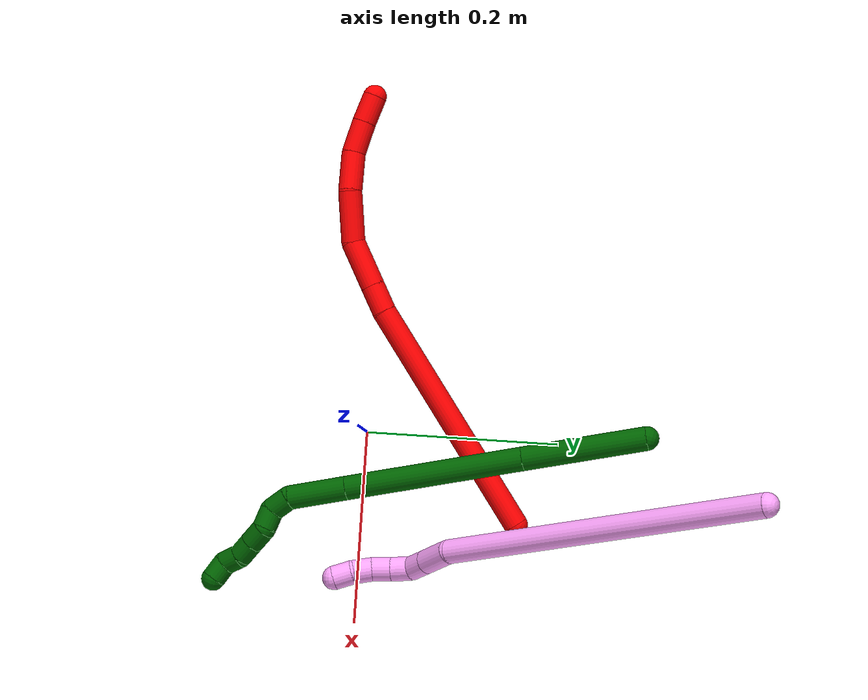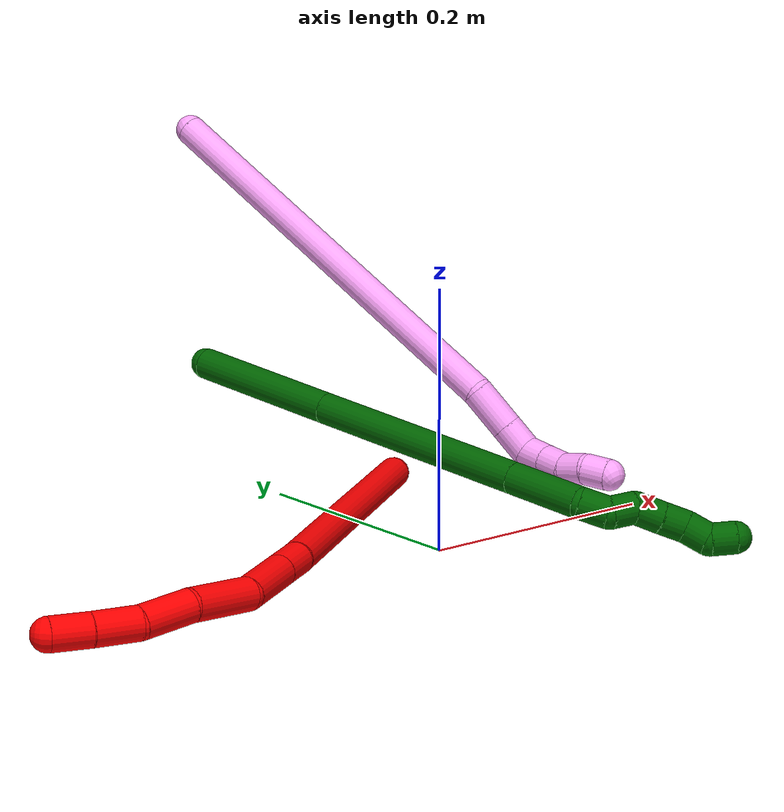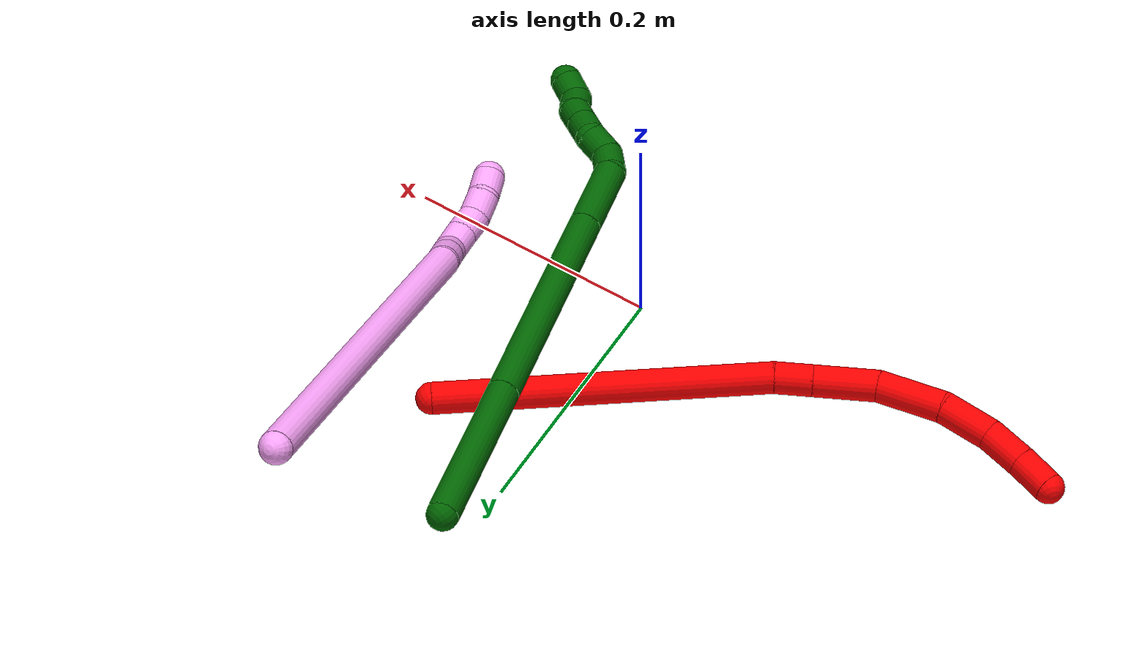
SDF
<sdf version="1.7">
 <world name="default">
  <model name="photoneo_s_sensor">
   <static>1</static>
   <pose>0 0 2 1.57079 1.57079 3.14159</pose>
   <link name="link">
    <inertial><mass>0.1</mass></inertial>
    <sensor name="sensor" type="depth">
     <update_rate>30</update_rate>
     <camera>
      <horizontal_fov>1.22</horizontal_fov>
      <image><width>1920</width><height>1200</height><format>B8G8R8</format></image>
      <clip><near>0.1</near><far>4</far></clip>
      <depth_camera><output>points</output></depth_camera>
     </camera>
     <plugin name="camera_plugin" filename="libgazebo_ros_depth_camera.so">
      <baseline>0.2</baseline>
      <alwaysOn>1</alwaysOn>
      <updateRate>0.0</updateRate>
      <cameraName>camera_ir</cameraName>
      <imageTopicName>/camera/color/image_raw</imageTopicName>
      <cameraInfoTopicName>/camera/color/camera_info</cameraInfoTopicName>
      <depthImageTopicName>/camera/depth/image_raw</depthImageTopicName>
      <depthImageCameraInfoTopicName>/camera/depth/camera_info</depthImageCameraInfoTopicName>
      <pointCloudTopicName>/camera/depth/points</pointCloudTopicName>
      <frameName>fr_optical</frameName>
      <pointCloudCutoff>0.1</pointCloudCutoff>
      <pointCloudCutoffMax>2.0</pointCloudCutoffMax>
      <distortionK1>0</distortionK1>
      <distortionK2>0</distortionK2>
      <distortionK3>0</distortionK3>
      <distortionT1>0</distortionT1>
      <distortionT2>0</distortionT2>
      <CxPrime>0</CxPrime>
      <Cx>0</Cx>
      <Cy>0</Cy>
      <focalLength>0</focalLength>
      <hackBaseline>0</hackBaseline>
     </plugin>
    </sensor>
   </link>
  </model>
  <model name="bin">
   <static>1</static>
   <link name="bottom">
    <collision name="collision-bottom">
     <pose>0 0 -0.01 0 -0 0</pose>
     <geometry><box><size>0.8 0.6 0.02</size></box></geometry>
     <surface>
      <friction><ode><mu>100</mu><mu2>100</mu2></ode></friction>
      <contact><collide_bitmask>65535</collide_bitmask></contact>
     </surface>
    </collision>
   </link>
   <link name="west_wall">
    <collision name="collision-west_wall">
     <pose>-0.41 0 0.1 0 -0 0</pose>
     <geometry><box><size>0.02 0.6 0.2</size></box></geometry>
     <surface>
      <friction><ode><mu>100</mu><mu2>100</mu2></ode></friction>
      <contact><collide_bitmask>65535</collide_bitmask></contact>
     </surface>
    </collision>
   </link>
   <link name="east_wall">
    <collision name="collision-east_wall">
     <pose>0.41 0 0.1 0 -0 0</pose>
     <geometry><box><size>0.02 0.6 0.2</size></box></geometry>
     <surface>
      <friction><ode><mu>100</mu><mu2>100</mu2></ode></friction>
      <contact><collide_bitmask>65535</collide_bitmask></contact>
     </surface>
    </collision>
   </link>
   <link name="south_wall">
    <collision name="collision-south_wall">
     <pose>0 -0.31 0.1 0 -0 0</pose>
     <geometry><box><size>0.8 0.02 0.2</size></box></geometry>
     <surface>
      <friction><ode><mu>100</mu><mu2>100</mu2></ode></friction>
      <contact><collide_bitmask>65535</collide_bitmask></contact>
     </surface>
    </collision>
   </link>
   <link name="north_wall">
    <collision name="collision-north_wall">
     <pose>0 0.31 0.1 0 -0 0</pose>
     <geometry><box><size>0.8 0.02 0.2</size></box></geometry>
     <surface>
      <friction><ode><mu>100</mu><mu2>100</mu2></ode></friction>
      <contact><collide_bitmask>65535</collide_bitmask></contact>
     </surface>
    </collision>
   </link>
  </model>
  <model name="2">
   <static>0</static>
   <link name="2">
    <collision name="collision-cylinder-e_1_1_4">
     <pose>-0.126874 0.00416 0.03083 -0.134109 -1.33034 0.105259</pose>
     <geometry><cylinder><radius>0.0125</radius><length>0.261264</length></cylinder></geometry>
     <surface>
      <friction><ode><mu>1.16</mu><mu2>1.16</mu2><slip1>0</slip1><slip2>0</slip2></ode></friction>
      <contact><ode><kp>1e+06</kp><kd>1</kd><max_vel>0</max_vel><min_depth>0.001</min_depth></ode></contact>
     </surface>
    </collision>
    <visual name="visual-cylinder-e_1_1_4">
     <pose>-0.126874 0.00416 0.03083 -0.134109 -1.33034 0.105259</pose>
     <geometry><cylinder><radius>0.0125</radius><length>0.261264</length></cylinder></geometry>
     <material><ambient>1 0 0 1</ambient></material>
    </visual>
    <collision name="collision-cylinder-e_2_4_5">
     <pose>-0.267495 0.009745 0.066961 -0.262749 -1.19091 0.178563</pose>
     <geometry><cylinder><radius>0.0125</radius><length>0.029606</length></cylinder></geometry>
     <surface>
      <friction><ode><mu>1.16</mu><mu2>1.16</mu2><slip1>0</slip1><slip2>0</slip2></ode></friction>
      <contact><ode><kp>1e+06</kp><kd>1</kd><max_vel>0</max_vel><min_depth>0.001</min_depth></ode></contact>
     </surface>
    </collision>
    <visual name="visual-cylinder-e_2_4_5">
     <pose>-0.267495 0.009745 0.066961 -0.262749 -1.19091 0.178563</pose>
     <geometry><cylinder><radius>0.0125</radius><length>0.029606</length></cylinder></geometry>
     <material><ambient>1 0 0 1</ambient></material>
    </visual>
    <collision name="collision-cylinder-e_3_5_6">
     <pose>-0.304763 0.013608 0.081335 -0.262448 -1.1908 0.178337</pose>
     <geometry><cylinder><radius>0.0125</radius><length>0.050655</length></cylinder></geometry>
     <surface>
      <friction><ode><mu>1.16</mu><mu2>1.16</mu2><slip1>0</slip1><slip2>0</slip2></ode></friction>
      <contact><ode><kp>1e+06</kp><kd>1</kd><max_vel>0</max_vel><min_depth>0.001</min_depth></ode></contact>
     </surface>
    </collision>
    <visual name="visual-cylinder-e_3_5_6">
     <pose>-0.304763 0.013608 0.081335 -0.262448 -1.1908 0.178337</pose>
     <geometry><cylinder><radius>0.0125</radius><length>0.050655</length></cylinder></geometry>
     <material><ambient>1 0 0 1</ambient></material>
    </visual>
    <collision name="collision-cylinder-e_4_6_7">
     <pose>-0.34835 0.015873 0.108447 0.009557 -0.838497 -0.004259</pose>
     <geometry><cylinder><radius>0.0125</radius><length>0.053968</length></cylinder></geometry>
     <surface>
      <friction><ode><mu>1.16</mu><mu2>1.16</mu2><slip1>0</slip1><slip2>0</slip2></ode></friction>
      <contact><ode><kp>1e+06</kp><kd>1</kd><max_vel>0</max_vel><min_depth>0.001</min_depth></ode></contact>
     </surface>
    </collision>
    <visual name="visual-cylinder-e_4_6_7">
     <pose>-0.34835 0.015873 0.108447 0.009557 -0.838497 -0.004259</pose>
     <geometry><cylinder><radius>0.0125</radius><length>0.053968</length></cylinder></geometry>
     <material><ambient>1 0 0 1</ambient></material>
    </visual>
    <collision name="collision-cylinder-e_5_7_8">
     <pose>-0.381354 0.019285 0.141872 -0.228925 -0.686215 0.082093</pose>
     <geometry><cylinder><radius>0.0125</radius><length>0.040838</length></cylinder></geometry>
     <surface>
      <friction><ode><mu>1.16</mu><mu2>1.16</mu2><slip1>0</slip1><slip2>0</slip2></ode></friction>
      <contact><ode><kp>1e+06</kp><kd>1</kd><max_vel>0</max_vel><min_depth>0.001</min_depth></ode></contact>
     </surface>
    </collision>
    <visual name="visual-cylinder-e_5_7_8">
     <pose>-0.381354 0.019285 0.141872 -0.228925 -0.686215 0.082093</pose>
     <geometry><cylinder><radius>0.0125</radius><length>0.040838</length></cylinder></geometry>
     <material><ambient>1 0 0 1</ambient></material>
    </visual>
    <collision name="collision-cylinder-e_6_8_9">
     <pose>-0.401718 0.024272 0.172525 -0.091559 -0.451069 0.021021</pose>
     <geometry><cylinder><radius>0.0125</radius><length>0.034071</length></cylinder></geometry>
     <surface>
      <friction><ode><mu>1.16</mu><mu2>1.16</mu2><slip1>0</slip1><slip2>0</slip2></ode></friction>
      <contact><ode><kp>1e+06</kp><kd>1</kd><max_vel>0</max_vel><min_depth>0.001</min_depth></ode></contact>
     </surface>
    </collision>
    <visual name="visual-cylinder-e_6_8_9">
     <pose>-0.401718 0.024272 0.172525 -0.091559 -0.451069 0.021021</pose>
     <geometry><cylinder><radius>0.0125</radius><length>0.034071</length></cylinder></geometry>
     <material><ambient>1 0 0 1</ambient></material>
    </visual>
    <collision name="collision-cylinder-e_7_9_2">
     <pose>-0.41476 0.02673 0.201444 -0.077252 -0.389196 0.015233</pose>
     <geometry><cylinder><radius>0.0125</radius><length>0.029599</length></cylinder></geometry>
     <surface>
      <friction><ode><mu>1.16</mu><mu2>1.16</mu2><slip1>0</slip1><slip2>0</slip2></ode></friction>
      <contact><ode><kp>1e+06</kp><kd>1</kd><max_vel>0</max_vel><min_depth>0.001</min_depth></ode></contact>
     </surface>
    </collision>
    <visual name="visual-cylinder-e_7_9_2">
     <pose>-0.41476 0.02673 0.201444 -0.077252 -0.389196 0.015233</pose>
     <geometry><cylinder><radius>0.0125</radius><length>0.029599</length></cylinder></geometry>
     <material><ambient>1 0 0 1</ambient></material>
    </visual>
    <collision name="collision-sphere-2">
     <pose>-0.420375 0.027787 0.215096 0 -0 0</pose>
     <geometry><sphere><radius>0.0125</radius></sphere></geometry>
     <surface>
      <friction><ode><mu>1.16</mu><mu2>1.16</mu2><slip1>0</slip1><slip2>0</slip2></ode></friction>
      <contact><ode><kp>1e+06</kp><kd>1</kd><max_vel>0</max_vel><min_depth>0.001</min_depth></ode></contact>
     </surface>
    </collision>
    <visual name="visual-sphere-2">
     <pose>-0.420375 0.027787 0.215096 0 -0 0</pose>
     <geometry><sphere><radius>0.0125</radius></sphere></geometry>
     <material><ambient>1 0 0 1</ambient></material>
    </visual>
    <collision name="collision-sphere-9">
     <pose>-0.409144 0.025674 0.187792 0 -0 0</pose>
     <geometry><sphere><radius>0.0125</radius></sphere></geometry>
     <surface>
      <friction><ode><mu>1.16</mu><mu2>1.16</mu2><slip1>0</slip1><slip2>0</slip2></ode></friction>
      <contact><ode><kp>1e+06</kp><kd>1</kd><max_vel>0</max_vel><min_depth>0.001</min_depth></ode></contact>
     </surface>
    </collision>
    <visual name="visual-sphere-9">
     <pose>-0.409144 0.025674 0.187792 0 -0 0</pose>
     <geometry><sphere><radius>0.0125</radius></sphere></geometry>
     <material><ambient>1 0 0 1</ambient></material>
    </visual>
    <collision name="collision-sphere-4">
     <pose>-0.253747 0.008319 0.06166 0 -0 0</pose>
     <geometry><sphere><radius>0.0125</radius></sphere></geometry>
     <surface>
      <friction><ode><mu>1.16</mu><mu2>1.16</mu2><slip1>0</slip1><slip2>0</slip2></ode></friction>
      <contact><ode><kp>1e+06</kp><kd>1</kd><max_vel>0</max_vel><min_depth>0.001</min_depth></ode></contact>
     </surface>
    </collision>
    <visual name="visual-sphere-4">
     <pose>-0.253747 0.008319 0.06166 0 -0 0</pose>
     <geometry><sphere><radius>0.0125</radius></sphere></geometry>
     <material><ambient>1 0 0 1</ambient></material>
    </visual>
    <collision name="collision-sphere-1">
     <geometry><sphere><radius>0.0125</radius></sphere></geometry>
     <surface>
      <friction><ode><mu>1.16</mu><mu2>1.16</mu2><slip1>0</slip1><slip2>0</slip2></ode></friction>
      <contact><ode><kp>1e+06</kp><kd>1</kd><max_vel>0</max_vel><min_depth>0.001</min_depth></ode></contact>
     </surface>
    </collision>
    <visual name="visual-sphere-1">
     <geometry><sphere><radius>0.0125</radius></sphere></geometry>
     <material><ambient>1 0 0 1</ambient></material>
    </visual>
    <collision name="collision-sphere-8">
     <pose>-0.394292 0.02287 0.157257 0 -0 0</pose>
     <geometry><sphere><radius>0.0125</radius></sphere></geometry>
     <surface>
      <friction><ode><mu>1.16</mu><mu2>1.16</mu2><slip1>0</slip1><slip2>0</slip2></ode></friction>
      <contact><ode><kp>1e+06</kp><kd>1</kd><max_vel>0</max_vel><min_depth>0.001</min_depth></ode></contact>
     </surface>
    </collision>
    <visual name="visual-sphere-8">
     <pose>-0.394292 0.02287 0.157257 0 -0 0</pose>
     <geometry><sphere><radius>0.0125</radius></sphere></geometry>
     <material><ambient>1 0 0 1</ambient></material>
    </visual>
    <collision name="collision-sphere-5">
     <pose>-0.281242 0.011171 0.072262 0 -0 0</pose>
     <geometry><sphere><radius>0.0125</radius></sphere></geometry>
     <surface>
      <friction><ode><mu>1.16</mu><mu2>1.16</mu2><slip1>0</slip1><slip2>0</slip2></ode></friction>
      <contact><ode><kp>1e+06</kp><kd>1</kd><max_vel>0</max_vel><min_depth>0.001</min_depth></ode></contact>
     </surface>
    </collision>
    <visual name="visual-sphere-5">
     <pose>-0.281242 0.011171 0.072262 0 -0 0</pose>
     <geometry><sphere><radius>0.0125</radius></sphere></geometry>
     <material><ambient>1 0 0 1</ambient></material>
    </visual>
    <collision name="collision-sphere-6">
     <pose>-0.328284 0.016045 0.090407 0 -0 0</pose>
     <geometry><sphere><radius>0.0125</radius></sphere></geometry>
     <surface>
      <friction><ode><mu>1.16</mu><mu2>1.16</mu2><slip1>0</slip1><slip2>0</slip2></ode></friction>
      <contact><ode><kp>1e+06</kp><kd>1</kd><max_vel>0</max_vel><min_depth>0.001</min_depth></ode></contact>
     </surface>
    </collision>
    <visual name="visual-sphere-6">
     <pose>-0.328284 0.016045 0.090407 0 -0 0</pose>
     <geometry><sphere><radius>0.0125</radius></sphere></geometry>
     <material><ambient>1 0 0 1</ambient></material>
    </visual>
    <collision name="collision-sphere-7">
     <pose>-0.368416 0.0157 0.126487 0 -0 0</pose>
     <geometry><sphere><radius>0.0125</radius></sphere></geometry>
     <surface>
      <friction><ode><mu>1.16</mu><mu2>1.16</mu2><slip1>0</slip1><slip2>0</slip2></ode></friction>
      <contact><ode><kp>1e+06</kp><kd>1</kd><max_vel>0</max_vel><min_depth>0.001</min_depth></ode></contact>
     </surface>
    </collision>
    <visual name="visual-sphere-7">
     <pose>-0.368416 0.0157 0.126487 0 -0 0</pose>
     <geometry><sphere><radius>0.0125</radius></sphere></geometry>
     <material><ambient>1 0 0 1</ambient></material>
    </visual>
    <inertial>
     <pose>-0.233683 0.010654 0.075289 0 -0 0</pose>
     <mass>0.5</mass>
     <inertia>
      <ixx>0.000389</ixx>
      <ixy>0</ixy>
      <ixz>0</ixz>
      <iyy>0.001583</iyy>
      <iyz>0</iyz>
      <izz>0.001453</izz>
     </inertia>
    </inertial>
   </link>
   <pose>0.086918 0.162267 0.01149 -1.49866 0.03196 0.85929</pose>
  </model>
  <model name="4">
   <static>0</static>
   <link name="4">
    <collision name="collision-cylinder-e_1_1_4">
     <pose>0.015908 -0.039736 -0.173001 2.91582 0.089382 0.751478</pose>
     <geometry><cylinder><radius>0.0125</radius><length>0.356434</length></cylinder></geometry>
     <surface>
      <friction><ode><mu>1.16</mu><mu2>1.16</mu2><slip1>0</slip1><slip2>0</slip2></ode></friction>
      <contact><ode><kp>1e+06</kp><kd>1</kd><max_vel>0</max_vel><min_depth>0.001</min_depth></ode></contact>
     </surface>
    </collision>
    <visual name="visual-cylinder-e_1_1_4">
     <pose>0.015908 -0.039736 -0.173001 2.91582 0.089382 0.751478</pose>
     <geometry><cylinder><radius>0.0125</radius><length>0.356434</length></cylinder></geometry>
     <material><ambient>1 0.65098 0.996078 1</ambient></material>
    </visual>
    <collision name="collision-cylinder-e_2_4_5">
     <pose>0.037579 -0.078636 -0.363454 -3.09375 0.318598 -2.84594</pose>
     <geometry><cylinder><radius>0.0125</radius><length>0.036796</length></cylinder></geometry>
     <surface>
      <friction><ode><mu>1.16</mu><mu2>1.16</mu2><slip1>0</slip1><slip2>0</slip2></ode></friction>
      <contact><ode><kp>1e+06</kp><kd>1</kd><max_vel>0</max_vel><min_depth>0.001</min_depth></ode></contact>
     </surface>
    </collision>
    <visual name="visual-cylinder-e_2_4_5">
     <pose>0.037579 -0.078636 -0.363454 -3.09375 0.318598 -2.84594</pose>
     <geometry><cylinder><radius>0.0125</radius><length>0.036796</length></cylinder></geometry>
     <material><ambient>1 0.65098 0.996078 1</ambient></material>
    </visual>
    <collision name="collision-cylinder-e_3_5_6">
     <pose>0.047164 -0.077276 -0.392741 -3.09736 0.312097 -2.86225</pose>
     <geometry><cylinder><radius>0.0125</radius><length>0.024893</length></cylinder></geometry>
     <surface>
      <friction><ode><mu>1.16</mu><mu2>1.16</mu2><slip1>0</slip1><slip2>0</slip2></ode></friction>
      <contact><ode><kp>1e+06</kp><kd>1</kd><max_vel>0</max_vel><min_depth>0.001</min_depth></ode></contact>
     </surface>
    </collision>
    <visual name="visual-cylinder-e_3_5_6">
     <pose>0.047164 -0.077276 -0.392741 -3.09736 0.312097 -2.86225</pose>
     <geometry><cylinder><radius>0.0125</radius><length>0.024893</length></cylinder></geometry>
     <material><ambient>1 0.65098 0.996078 1</ambient></material>
    </visual>
    <collision name="collision-cylinder-e_4_6_7">
     <pose>0.050361 -0.082443 -0.413476 2.57282 -0.059097 -0.201547</pose>
     <geometry><cylinder><radius>0.0125</radius><length>0.021166</length></cylinder></geometry>
     <surface>
      <friction><ode><mu>1.16</mu><mu2>1.16</mu2><slip1>0</slip1><slip2>0</slip2></ode></friction>
      <contact><ode><kp>1e+06</kp><kd>1</kd><max_vel>0</max_vel><min_depth>0.001</min_depth></ode></contact>
     </surface>
    </collision>
    <visual name="visual-cylinder-e_4_6_7">
     <pose>0.050361 -0.082443 -0.413476 2.57282 -0.059097 -0.201547</pose>
     <geometry><cylinder><radius>0.0125</radius><length>0.021166</length></cylinder></geometry>
     <material><ambient>1 0.65098 0.996078 1</ambient></material>
    </visual>
    <collision name="collision-cylinder-e_5_7_8">
     <pose>0.048484 -0.093894 -0.430779 2.54052 -0.122288 -0.390043</pose>
     <geometry><cylinder><radius>0.0125</radius><length>0.02053</length></cylinder></geometry>
     <surface>
      <friction><ode><mu>1.16</mu><mu2>1.16</mu2><slip1>0</slip1><slip2>0</slip2></ode></friction>
      <contact><ode><kp>1e+06</kp><kd>1</kd><max_vel>0</max_vel><min_depth>0.001</min_depth></ode></contact>
     </surface>
    </collision>
    <visual name="visual-cylinder-e_5_7_8">
     <pose>0.048484 -0.093894 -0.430779 2.54052 -0.122288 -0.390043</pose>
     <geometry><cylinder><radius>0.0125</radius><length>0.02053</length></cylinder></geometry>
     <material><ambient>1 0.65098 0.996078 1</ambient></material>
    </visual>
    <collision name="collision-cylinder-e_6_8_9">
     <pose>0.046946 -0.107513 -0.445492 2.24742 -0.028304 -0.059018</pose>
     <geometry><cylinder><radius>0.0125</radius><length>0.020163</length></cylinder></geometry>
     <surface>
      <friction><ode><mu>1.16</mu><mu2>1.16</mu2><slip1>0</slip1><slip2>0</slip2></ode></friction>
      <contact><ode><kp>1e+06</kp><kd>1</kd><max_vel>0</max_vel><min_depth>0.001</min_depth></ode></contact>
     </surface>
    </collision>
    <visual name="visual-cylinder-e_6_8_9">
     <pose>0.046946 -0.107513 -0.445492 2.24742 -0.028304 -0.059018</pose>
     <geometry><cylinder><radius>0.0125</radius><length>0.020163</length></cylinder></geometry>
     <material><ambient>1 0.65098 0.996078 1</ambient></material>
    </visual>
    <collision name="collision-cylinder-e_7_9_2">
     <pose>0.048237 -0.12169 -0.459402 2.44792 0.158126 0.431568</pose>
     <geometry><cylinder><radius>0.0125</radius><length>0.020017</length></cylinder></geometry>
     <surface>
      <friction><ode><mu>1.16</mu><mu2>1.16</mu2><slip1>0</slip1><slip2>0</slip2></ode></friction>
      <contact><ode><kp>1e+06</kp><kd>1</kd><max_vel>0</max_vel><min_depth>0.001</min_depth></ode></contact>
     </surface>
    </collision>
    <visual name="visual-cylinder-e_7_9_2">
     <pose>0.048237 -0.12169 -0.459402 2.44792 0.158126 0.431568</pose>
     <geometry><cylinder><radius>0.0125</radius><length>0.020017</length></cylinder></geometry>
     <material><ambient>1 0.65098 0.996078 1</ambient></material>
    </visual>
    <collision name="collision-sphere-2">
     <pose>0.049813 -0.12801 -0.467001 0 -0 0</pose>
     <geometry><sphere><radius>0.0125</radius></sphere></geometry>
     <surface>
      <friction><ode><mu>1.16</mu><mu2>1.16</mu2><slip1>0</slip1><slip2>0</slip2></ode></friction>
      <contact><ode><kp>1e+06</kp><kd>1</kd><max_vel>0</max_vel><min_depth>0.001</min_depth></ode></contact>
     </surface>
    </collision>
    <visual name="visual-sphere-2">
     <pose>0.049813 -0.12801 -0.467001 0 -0 0</pose>
     <geometry><sphere><radius>0.0125</radius></sphere></geometry>
     <material><ambient>1 0.65098 0.996078 1</ambient></material>
    </visual>
    <collision name="collision-sphere-9">
     <pose>0.046661 -0.115371 -0.451802 0 -0 0</pose>
     <geometry><sphere><radius>0.0125</radius></sphere></geometry>
     <surface>
      <friction><ode><mu>1.16</mu><mu2>1.16</mu2><slip1>0</slip1><slip2>0</slip2></ode></friction>
      <contact><ode><kp>1e+06</kp><kd>1</kd><max_vel>0</max_vel><min_depth>0.001</min_depth></ode></contact>
     </surface>
    </collision>
    <visual name="visual-sphere-9">
     <pose>0.046661 -0.115371 -0.451802 0 -0 0</pose>
     <geometry><sphere><radius>0.0125</radius></sphere></geometry>
     <material><ambient>1 0.65098 0.996078 1</ambient></material>
    </visual>
    <collision name="collision-sphere-4">
     <pose>0.031816 -0.079471 -0.346002 0 -0 0</pose>
     <geometry><sphere><radius>0.0125</radius></sphere></geometry>
     <surface>
      <friction><ode><mu>1.16</mu><mu2>1.16</mu2><slip1>0</slip1><slip2>0</slip2></ode></friction>
      <contact><ode><kp>1e+06</kp><kd>1</kd><max_vel>0</max_vel><min_depth>0.001</min_depth></ode></contact>
     </surface>
    </collision>
    <visual name="visual-sphere-4">
     <pose>0.031816 -0.079471 -0.346002 0 -0 0</pose>
     <geometry><sphere><radius>0.0125</radius></sphere></geometry>
     <material><ambient>1 0.65098 0.996078 1</ambient></material>
    </visual>
    <collision name="collision-sphere-1">
     <geometry><sphere><radius>0.0125</radius></sphere></geometry>
     <surface>
      <friction><ode><mu>1.16</mu><mu2>1.16</mu2><slip1>0</slip1><slip2>0</slip2></ode></friction>
      <contact><ode><kp>1e+06</kp><kd>1</kd><max_vel>0</max_vel><min_depth>0.001</min_depth></ode></contact>
     </surface>
    </collision>
    <visual name="visual-sphere-1">
     <geometry><sphere><radius>0.0125</radius></sphere></geometry>
     <material><ambient>1 0.65098 0.996078 1</ambient></material>
    </visual>
    <collision name="collision-sphere-8">
     <pose>0.047232 -0.099656 -0.439182 0 -0 0</pose>
     <geometry><sphere><radius>0.0125</radius></sphere></geometry>
     <surface>
      <friction><ode><mu>1.16</mu><mu2>1.16</mu2><slip1>0</slip1><slip2>0</slip2></ode></friction>
      <contact><ode><kp>1e+06</kp><kd>1</kd><max_vel>0</max_vel><min_depth>0.001</min_depth></ode></contact>
     </surface>
    </collision>
    <visual name="visual-sphere-8">
     <pose>0.047232 -0.099656 -0.439182 0 -0 0</pose>
     <geometry><sphere><radius>0.0125</radius></sphere></geometry>
     <material><ambient>1 0.65098 0.996078 1</ambient></material>
    </visual>
    <collision name="collision-sphere-5">
     <pose>0.043342 -0.0778 -0.380907 0 -0 0</pose>
     <geometry><sphere><radius>0.0125</radius></sphere></geometry>
     <surface>
      <friction><ode><mu>1.16</mu><mu2>1.16</mu2><slip1>0</slip1><slip2>0</slip2></ode></friction>
      <contact><ode><kp>1e+06</kp><kd>1</kd><max_vel>0</max_vel><min_depth>0.001</min_depth></ode></contact>
     </surface>
    </collision>
    <visual name="visual-sphere-5">
     <pose>0.043342 -0.0778 -0.380907 0 -0 0</pose>
     <geometry><sphere><radius>0.0125</radius></sphere></geometry>
     <material><ambient>1 0.65098 0.996078 1</ambient></material>
    </visual>
    <collision name="collision-sphere-6">
     <pose>0.050986 -0.076753 -0.404574 0 -0 0</pose>
     <geometry><sphere><radius>0.0125</radius></sphere></geometry>
     <surface>
      <friction><ode><mu>1.16</mu><mu2>1.16</mu2><slip1>0</slip1><slip2>0</slip2></ode></friction>
      <contact><ode><kp>1e+06</kp><kd>1</kd><max_vel>0</max_vel><min_depth>0.001</min_depth></ode></contact>
     </surface>
    </collision>
    <visual name="visual-sphere-6">
     <pose>0.050986 -0.076753 -0.404574 0 -0 0</pose>
     <geometry><sphere><radius>0.0125</radius></sphere></geometry>
     <material><ambient>1 0.65098 0.996078 1</ambient></material>
    </visual>
    <collision name="collision-sphere-7">
     <pose>0.049736 -0.088133 -0.422377 0 -0 0</pose>
     <geometry><sphere><radius>0.0125</radius></sphere></geometry>
     <surface>
      <friction><ode><mu>1.16</mu><mu2>1.16</mu2><slip1>0</slip1><slip2>0</slip2></ode></friction>
      <contact><ode><kp>1e+06</kp><kd>1</kd><max_vel>0</max_vel><min_depth>0.001</min_depth></ode></contact>
     </surface>
    </collision>
    <visual name="visual-sphere-7">
     <pose>0.049736 -0.088133 -0.422377 0 -0 0</pose>
     <geometry><sphere><radius>0.0125</radius></sphere></geometry>
     <material><ambient>1 0.65098 0.996078 1</ambient></material>
    </visual>
    <inertial>
     <pose>0.024401 -0.054513 -0.241176 0 -0 0</pose>
     <mass>0.5</mass>
     <inertia>
      <ixx>0.005332</ixx>
      <ixy>0</ixy>
      <ixz>0</ixz>
      <iyy>-7.9e-05</iyy>
      <iyz>0</iyz>
      <izz>0.000471</izz>
     </inertia>
    </inertial>
   </link>
   <pose>0.052146 0.393092 0.270767 -0.810822 0.1711 0.21577</pose>
  </model>
  <model name="6">
   <static>0</static>
   <link name="6">
    <collision name="collision-cylinder-e_1_1_4">
     <pose>0.007615 -0.030685 -0.055983 2.64019 0.118722 0.456071</pose>
     <geometry><cylinder><radius>0.0125</radius><length>0.128587</length></cylinder></geometry>
     <surface>
      <friction><ode><mu>1.16</mu><mu2>1.16</mu2><slip1>0</slip1><slip2>0</slip2></ode></friction>
      <contact><ode><kp>1e+06</kp><kd>1</kd><max_vel>0</max_vel><min_depth>0.001</min_depth></ode></contact>
     </surface>
    </collision>
    <visual name="visual-cylinder-e_1_1_4">
     <pose>0.007615 -0.030685 -0.055983 2.64019 0.118722 0.456071</pose>
     <geometry><cylinder><radius>0.0125</radius><length>0.128587</length></cylinder></geometry>
     <material><ambient>0 0.392157 0.003922 1</ambient></material>
    </visual>
    <collision name="collision-cylinder-e_2_4_5">
     <pose>0.026047 -0.105736 -0.192507 2.63811 0.117093 0.448131</pose>
     <geometry><cylinder><radius>0.0125</radius><length>0.185171</length></cylinder></geometry>
     <surface>
      <friction><ode><mu>1.16</mu><mu2>1.16</mu2><slip1>0</slip1><slip2>0</slip2></ode></friction>
      <contact><ode><kp>1e+06</kp><kd>1</kd><max_vel>0</max_vel><min_depth>0.001</min_depth></ode></contact>
     </surface>
    </collision>
    <visual name="visual-cylinder-e_2_4_5">
     <pose>0.026047 -0.105736 -0.192507 2.63811 0.117093 0.448131</pose>
     <geometry><cylinder><radius>0.0125</radius><length>0.185171</length></cylinder></geometry>
     <material><ambient>0 0.392157 0.003922 1</ambient></material>
    </visual>
    <collision name="collision-cylinder-e_3_5_6">
     <pose>0.040464 -0.164762 -0.299507 2.63559 0.118487 0.451027</pose>
     <geometry><cylinder><radius>0.0125</radius><length>0.060927</length></cylinder></geometry>
     <surface>
      <friction><ode><mu>1.16</mu><mu2>1.16</mu2><slip1>0</slip1><slip2>0</slip2></ode></friction>
      <contact><ode><kp>1e+06</kp><kd>1</kd><max_vel>0</max_vel><min_depth>0.001</min_depth></ode></contact>
     </surface>
    </collision>
    <visual name="visual-cylinder-e_3_5_6">
     <pose>0.040464 -0.164762 -0.299507 2.63559 0.118487 0.451027</pose>
     <geometry><cylinder><radius>0.0125</radius><length>0.060927</length></cylinder></geometry>
     <material><ambient>0 0.392157 0.003922 1</ambient></material>
    </visual>
    <collision name="collision-cylinder-e_4_6_7">
     <pose>0.046327 -0.188728 -0.332441 2.17872 0.19693 0.373754</pose>
     <geometry><cylinder><radius>0.0125</radius><length>0.023118</length></cylinder></geometry>
     <surface>
      <friction><ode><mu>1.16</mu><mu2>1.16</mu2><slip1>0</slip1><slip2>0</slip2></ode></friction>
      <contact><ode><kp>1e+06</kp><kd>1</kd><max_vel>0</max_vel><min_depth>0.001</min_depth></ode></contact>
     </surface>
    </collision>
    <visual name="visual-cylinder-e_4_6_7">
     <pose>0.046327 -0.188728 -0.332441 2.17872 0.19693 0.373754</pose>
     <geometry><cylinder><radius>0.0125</radius><length>0.023118</length></cylinder></geometry>
     <material><ambient>0 0.392157 0.003922 1</ambient></material>
    </visual>
    <collision name="collision-cylinder-e_5_7_8">
     <pose>0.04609 -0.208177 -0.339802 1.65802 -0.240606 -0.262324</pose>
     <geometry><cylinder><radius>0.0125</radius><length>0.02097</length></cylinder></geometry>
     <surface>
      <friction><ode><mu>1.16</mu><mu2>1.16</mu2><slip1>0</slip1><slip2>0</slip2></ode></friction>
      <contact><ode><kp>1e+06</kp><kd>1</kd><max_vel>0</max_vel><min_depth>0.001</min_depth></ode></contact>
     </surface>
    </collision>
    <visual name="visual-cylinder-e_5_7_8">
     <pose>0.04609 -0.208177 -0.339802 1.65802 -0.240606 -0.262324</pose>
     <geometry><cylinder><radius>0.0125</radius><length>0.02097</length></cylinder></geometry>
     <material><ambient>0 0.392157 0.003922 1</ambient></material>
    </visual>
    <collision name="collision-cylinder-e_6_8_9">
     <pose>0.046401 -0.227789 -0.344543 1.95736 0.268208 0.395902</pose>
     <geometry><cylinder><radius>0.0125</radius><length>0.021202</length></cylinder></geometry>
     <surface>
      <friction><ode><mu>1.16</mu><mu2>1.16</mu2><slip1>0</slip1><slip2>0</slip2></ode></friction>
      <contact><ode><kp>1e+06</kp><kd>1</kd><max_vel>0</max_vel><min_depth>0.001</min_depth></ode></contact>
     </surface>
    </collision>
    <visual name="visual-cylinder-e_6_8_9">
     <pose>0.046401 -0.227789 -0.344543 1.95736 0.268208 0.395902</pose>
     <geometry><cylinder><radius>0.0125</radius><length>0.021202</length></cylinder></geometry>
     <material><ambient>0 0.392157 0.003922 1</ambient></material>
    </visual>
    <collision name="collision-cylinder-e_7_9_10">
     <pose>0.051668 -0.246275 -0.351973 1.94835 0.248126 0.363171</pose>
     <geometry><cylinder><radius>0.0125</radius><length>0.020016</length></cylinder></geometry>
     <surface>
      <friction><ode><mu>1.16</mu><mu2>1.16</mu2><slip1>0</slip1><slip2>0</slip2></ode></friction>
      <contact><ode><kp>1e+06</kp><kd>1</kd><max_vel>0</max_vel><min_depth>0.001</min_depth></ode></contact>
     </surface>
    </collision>
    <visual name="visual-cylinder-e_7_9_10">
     <pose>0.051668 -0.246275 -0.351973 1.94835 0.248126 0.363171</pose>
     <geometry><cylinder><radius>0.0125</radius><length>0.020016</length></cylinder></geometry>
     <material><ambient>0 0.392157 0.003922 1</ambient></material>
    </visual>
    <collision name="collision-cylinder-e_8_10_11">
     <pose>0.057572 -0.262078 -0.362038 2.33384 0.35188 0.788411</pose>
     <geometry><cylinder><radius>0.0125</radius><length>0.020001</length></cylinder></geometry>
     <surface>
      <friction><ode><mu>1.16</mu><mu2>1.16</mu2><slip1>0</slip1><slip2>0</slip2></ode></friction>
      <contact><ode><kp>1e+06</kp><kd>1</kd><max_vel>0</max_vel><min_depth>0.001</min_depth></ode></contact>
     </surface>
    </collision>
    <visual name="visual-cylinder-e_8_10_11">
     <pose>0.057572 -0.262078 -0.362038 2.33384 0.35188 0.788411</pose>
     <geometry><cylinder><radius>0.0125</radius><length>0.020001</length></cylinder></geometry>
     <material><ambient>0 0.392157 0.003922 1</ambient></material>
    </visual>
    <collision name="collision-cylinder-e_9_11_2">
     <pose>0.05924 -0.278173 -0.371725 1.90176 -0.178862 -0.249945</pose>
     <geometry><cylinder><radius>0.0125</radius><length>0.020008</length></cylinder></geometry>
     <surface>
      <friction><ode><mu>1.16</mu><mu2>1.16</mu2><slip1>0</slip1><slip2>0</slip2></ode></friction>
      <contact><ode><kp>1e+06</kp><kd>1</kd><max_vel>0</max_vel><min_depth>0.001</min_depth></ode></contact>
     </surface>
    </collision>
    <visual name="visual-cylinder-e_9_11_2">
     <pose>0.05924 -0.278173 -0.371725 1.90176 -0.178862 -0.249945</pose>
     <geometry><cylinder><radius>0.0125</radius><length>0.020008</length></cylinder></geometry>
     <material><ambient>0 0.392157 0.003922 1</ambient></material>
    </visual>
    <collision name="collision-sphere-2">
     <pose>0.05746 -0.287483 -0.374924 0 -0 0</pose>
     <geometry><sphere><radius>0.0125</radius></sphere></geometry>
     <surface>
      <friction><ode><mu>1.16</mu><mu2>1.16</mu2><slip1>0</slip1><slip2>0</slip2></ode></friction>
      <contact><ode><kp>1e+06</kp><kd>1</kd><max_vel>0</max_vel><min_depth>0.001</min_depth></ode></contact>
     </surface>
    </collision>
    <visual name="visual-sphere-2">
     <pose>0.05746 -0.287483 -0.374924 0 -0 0</pose>
     <geometry><sphere><radius>0.0125</radius></sphere></geometry>
     <material><ambient>0 0.392157 0.003922 1</ambient></material>
    </visual>
    <collision name="collision-sphere-11">
     <pose>0.061019 -0.268863 -0.368526 0 -0 0</pose>
     <geometry><sphere><radius>0.0125</radius></sphere></geometry>
     <surface>
      <friction><ode><mu>1.16</mu><mu2>1.16</mu2><slip1>0</slip1><slip2>0</slip2></ode></friction>
      <contact><ode><kp>1e+06</kp><kd>1</kd><max_vel>0</max_vel><min_depth>0.001</min_depth></ode></contact>
     </surface>
    </collision>
    <visual name="visual-sphere-11">
     <pose>0.061019 -0.268863 -0.368526 0 -0 0</pose>
     <geometry><sphere><radius>0.0125</radius></sphere></geometry>
     <material><ambient>0 0.392157 0.003922 1</ambient></material>
    </visual>
    <collision name="collision-sphere-10">
     <pose>0.054126 -0.255294 -0.35555 0 -0 0</pose>
     <geometry><sphere><radius>0.0125</radius></sphere></geometry>
     <surface>
      <friction><ode><mu>1.16</mu><mu2>1.16</mu2><slip1>0</slip1><slip2>0</slip2></ode></friction>
      <contact><ode><kp>1e+06</kp><kd>1</kd><max_vel>0</max_vel><min_depth>0.001</min_depth></ode></contact>
     </surface>
    </collision>
    <visual name="visual-sphere-10">
     <pose>0.054126 -0.255294 -0.35555 0 -0 0</pose>
     <geometry><sphere><radius>0.0125</radius></sphere></geometry>
     <material><ambient>0 0.392157 0.003922 1</ambient></material>
    </visual>
    <collision name="collision-sphere-9">
     <pose>0.04921 -0.237257 -0.348397 0 -0 0</pose>
     <geometry><sphere><radius>0.0125</radius></sphere></geometry>
     <surface>
      <friction><ode><mu>1.16</mu><mu2>1.16</mu2><slip1>0</slip1><slip2>0</slip2></ode></friction>
      <contact><ode><kp>1e+06</kp><kd>1</kd><max_vel>0</max_vel><min_depth>0.001</min_depth></ode></contact>
     </surface>
    </collision>
    <visual name="visual-sphere-9">
     <pose>0.04921 -0.237257 -0.348397 0 -0 0</pose>
     <geometry><sphere><radius>0.0125</radius></sphere></geometry>
     <material><ambient>0 0.392157 0.003922 1</ambient></material>
    </visual>
    <collision name="collision-sphere-4">
     <pose>0.01523 -0.061371 -0.111966 0 -0 0</pose>
     <geometry><sphere><radius>0.0125</radius></sphere></geometry>
     <surface>
      <friction><ode><mu>1.16</mu><mu2>1.16</mu2><slip1>0</slip1><slip2>0</slip2></ode></friction>
      <contact><ode><kp>1e+06</kp><kd>1</kd><max_vel>0</max_vel><min_depth>0.001</min_depth></ode></contact>
     </surface>
    </collision>
    <visual name="visual-sphere-4">
     <pose>0.01523 -0.061371 -0.111966 0 -0 0</pose>
     <geometry><sphere><radius>0.0125</radius></sphere></geometry>
     <material><ambient>0 0.392157 0.003922 1</ambient></material>
    </visual>
    <collision name="collision-sphere-1">
     <geometry><sphere><radius>0.0125</radius></sphere></geometry>
     <surface>
      <friction><ode><mu>1.16</mu><mu2>1.16</mu2><slip1>0</slip1><slip2>0</slip2></ode></friction>
      <contact><ode><kp>1e+06</kp><kd>1</kd><max_vel>0</max_vel><min_depth>0.001</min_depth></ode></contact>
     </surface>
    </collision>
    <visual name="visual-sphere-1">
     <geometry><sphere><radius>0.0125</radius></sphere></geometry>
     <material><ambient>0 0.392157 0.003922 1</ambient></material>
    </visual>
    <collision name="collision-sphere-8">
     <pose>0.043591 -0.218322 -0.340689 0 -0 0</pose>
     <geometry><sphere><radius>0.0125</radius></sphere></geometry>
     <surface>
      <friction><ode><mu>1.16</mu><mu2>1.16</mu2><slip1>0</slip1><slip2>0</slip2></ode></friction>
      <contact><ode><kp>1e+06</kp><kd>1</kd><max_vel>0</max_vel><min_depth>0.001</min_depth></ode></contact>
     </surface>
    </collision>
    <visual name="visual-sphere-8">
     <pose>0.043591 -0.218322 -0.340689 0 -0 0</pose>
     <geometry><sphere><radius>0.0125</radius></sphere></geometry>
     <material><ambient>0 0.392157 0.003922 1</ambient></material>
    </visual>
    <collision name="collision-sphere-5">
     <pose>0.036863 -0.150101 -0.273048 0 -0 0</pose>
     <geometry><sphere><radius>0.0125</radius></sphere></geometry>
     <surface>
      <friction><ode><mu>1.16</mu><mu2>1.16</mu2><slip1>0</slip1><slip2>0</slip2></ode></friction>
      <contact><ode><kp>1e+06</kp><kd>1</kd><max_vel>0</max_vel><min_depth>0.001</min_depth></ode></contact>
     </surface>
    </collision>
    <visual name="visual-sphere-5">
     <pose>0.036863 -0.150101 -0.273048 0 -0 0</pose>
     <geometry><sphere><radius>0.0125</radius></sphere></geometry>
     <material><ambient>0 0.392157 0.003922 1</ambient></material>
    </visual>
    <collision name="collision-sphere-6">
     <pose>0.044065 -0.179424 -0.325966 0 -0 0</pose>
     <geometry><sphere><radius>0.0125</radius></sphere></geometry>
     <surface>
      <friction><ode><mu>1.16</mu><mu2>1.16</mu2><slip1>0</slip1><slip2>0</slip2></ode></friction>
      <contact><ode><kp>1e+06</kp><kd>1</kd><max_vel>0</max_vel><min_depth>0.001</min_depth></ode></contact>
     </surface>
    </collision>
    <visual name="visual-sphere-6">
     <pose>0.044065 -0.179424 -0.325966 0 -0 0</pose>
     <geometry><sphere><radius>0.0125</radius></sphere></geometry>
     <material><ambient>0 0.392157 0.003922 1</ambient></material>
    </visual>
    <collision name="collision-sphere-7">
     <pose>0.048588 -0.198033 -0.338915 0 -0 0</pose>
     <geometry><sphere><radius>0.0125</radius></sphere></geometry>
     <surface>
      <friction><ode><mu>1.16</mu><mu2>1.16</mu2><slip1>0</slip1><slip2>0</slip2></ode></friction>
      <contact><ode><kp>1e+06</kp><kd>1</kd><max_vel>0</max_vel><min_depth>0.001</min_depth></ode></contact>
     </surface>
    </collision>
    <visual name="visual-sphere-7">
     <pose>0.048588 -0.198033 -0.338915 0 -0 0</pose>
     <geometry><sphere><radius>0.0125</radius></sphere></geometry>
     <material><ambient>0 0.392157 0.003922 1</ambient></material>
    </visual>
    <inertial>
     <pose>0.02932 -0.125717 -0.209866 0 -0 0</pose>
     <mass>0.5</mass>
     <inertia>
      <ixx>0.000996</ixx>
      <ixy>0</ixy>
      <ixz>0</ixz>
      <iyy>-0.000269</iyy>
      <iyz>0</iyz>
      <izz>0.000245</izz>
     </inertia>
    </inertial>
   </link>
   <pose>-0.009154 0.28779 0.094388 1.87172 1.42331 -3.09808</pose>
  </model>
 </world>
</sdf>
